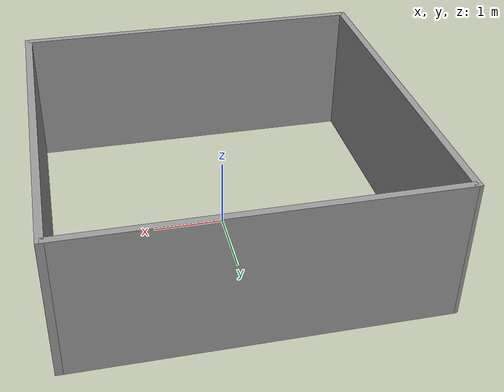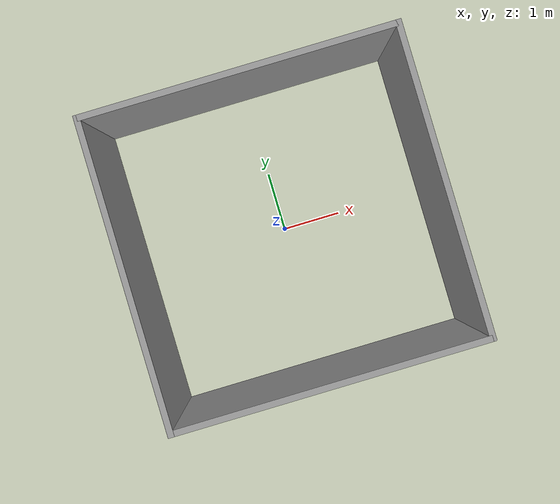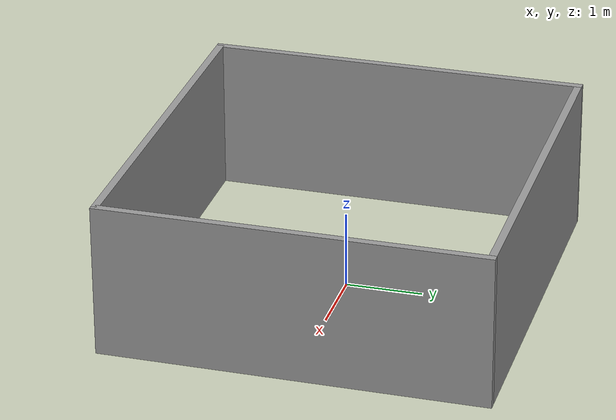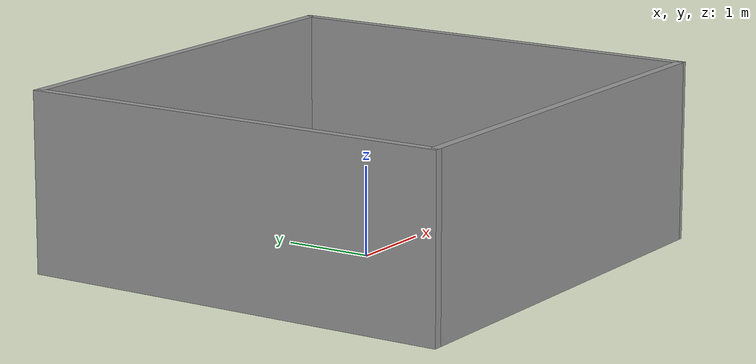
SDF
<?xml version="1.0" ?>
<sdf version="1.5">
  <world name="demo">

    <gui fullscreen="0">

      <!-- 3D scene -->
      <plugin filename="MinimalScene" name="3D View">
        <gz-gui>
          <title>3D View</title>
          <property type="bool" key="showTitleBar">false</property>
          <property type="string" key="state">docked</property>
        </gz-gui>

        <engine>ogre2</engine>
        <scene>scene</scene>
        <camera_pose>3.0 -3.0 2.0 0 0.7 2.2</camera_pose>-->
      </plugin>
      <plugin filename="GzSceneManager" name="Scene Manager">
        <gz-gui>
          <property key="resizable" type="bool">false</property>
          <property key="width" type="double">5</property>
          <property key="height" type="double">5</property>
          <property key="state" type="string">floating</property>
          <property key="showTitleBar" type="bool">false</property>
        </gz-gui>
      </plugin>
      <plugin filename="InteractiveViewControl" name="Interactive view control">
        <gz-gui>
          <property key="resizable" type="bool">false</property>
          <property key="width" type="double">5</property>
          <property key="height" type="double">5</property>
          <property key="state" type="string">floating</property>
          <property key="showTitleBar" type="bool">false</property>
        </gz-gui>
      </plugin>

      <plugin filename="ImageDisplay" name="Image Display">
        <gz-gui>
          <property key="state" type="string">floating</property>
        </gz-gui>
      </plugin>

    </gui>

 <!-- Plugins to simulate physics, render scene, and a few others -->
    <plugin
      filename="gz-sim-physics-system"
      name="gz::sim::systems::Physics">
    </plugin>
    <plugin
      filename="gz-sim-sensors-system"
      name="gz::sim::systems::Sensors">
      <render_engine>ogre2</render_engine>
    </plugin>
    <plugin
      filename="gz-sim-scene-broadcaster-system"
      name="gz::sim::systems::SceneBroadcaster">
    </plugin>
    <plugin
      filename="gz-sim-user-commands-system"
      name="gz::sim::systems::UserCommands">
    </plugin>

    <model name="ground_plane">
      <static>true</static>
      <link name="link">
        <collision name="collision">
          <geometry>
            <plane>
              <normal>0 0 1</normal>
              <size>100 100</size>
            </plane>
          </geometry>
          <surface>
            <friction>
              <ode>
                <mu>100</mu>
                <mu2>50</mu2>
              </ode>
            </friction>
          </surface>
        </collision>
      </link>
    </model>

    <light type="directional" name="sun">
      <cast_shadows>true</cast_shadows>
      <pose>0 0 10 0 0 0</pose>
      <diffuse>0.8 0.8 0.8 1</diffuse>
      <specular>0.2 0.2 0.2 1</specular>
      <attenuation>
        <range>1000</range>
        <constant>0.9</constant>
        <linear>0.01</linear>
        <quadratic>0.001</quadratic>
      </attenuation>
      <direction>-0.5 0.1 -0.9</direction>
    </light>

    <model name="wall_1">
      <include>
        <uri>model://wall_2x5</uri>
      </include>
      <pose>-2.5 0 1 0 -0 0</pose>
    </model>

    <model name="wall_2">
      <include>
        <uri>model://wall_2x5</uri>
      </include>
      <pose>2.5 0 1 0 -0 0</pose>
    </model>

    <model name="wall_3">
      <include>
        <uri>model://wall_2x5</uri>
      </include>
      <pose>0 2.45 1 0 -0 1.5707</pose>
    </model>

    <model name="wall_4">
      <include>
        <uri>model://wall_2x5</uri>
      </include>
      <pose>0 -2.45 1 0 -0 1.5707</pose>
    </model>

  </world>
</sdf>

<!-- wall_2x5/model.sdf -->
<sdf version='1.7'>

  <model name='wall_2x5'>
    <link name="link">
      <visual name="visual">
        <geometry>
          <box>
            <size>0.1 5.0 2.0</size>
          </box>
        </geometry>
        <material>
         <script>
          <uri>file://media/materials/scripts/gazebo.material</uri>
          <name>Gazebo/Gray</name>
         </script>
        </material>
      </visual>
      <collision name ="collision">
        <geometry>
           <box>
            <size>0.1 5.0 2.0</size>
          </box>
        </geometry>
      </collision>
    </link>
    <static>1</static>
    <allow_auto_disable>1</allow_auto_disable>
  </model>

</sdf>
